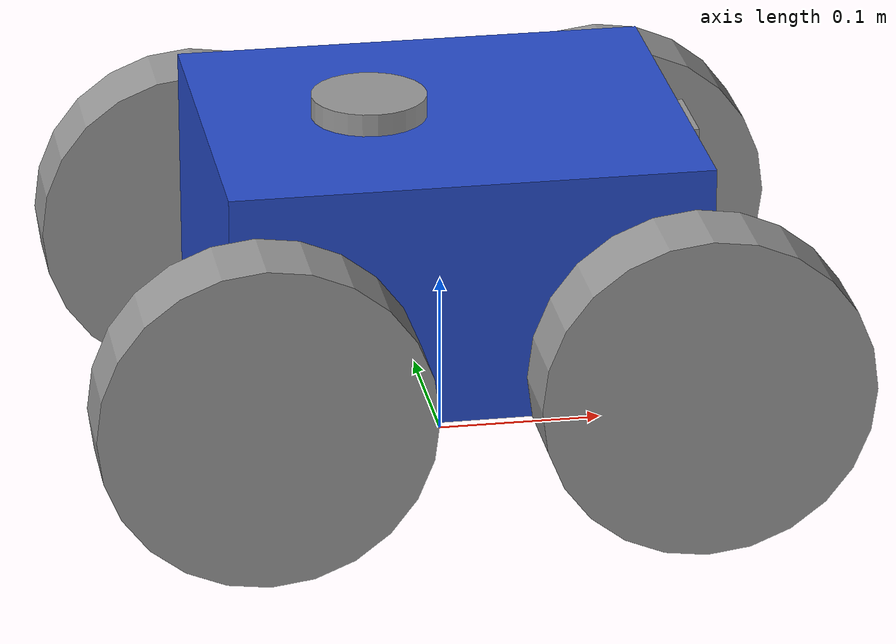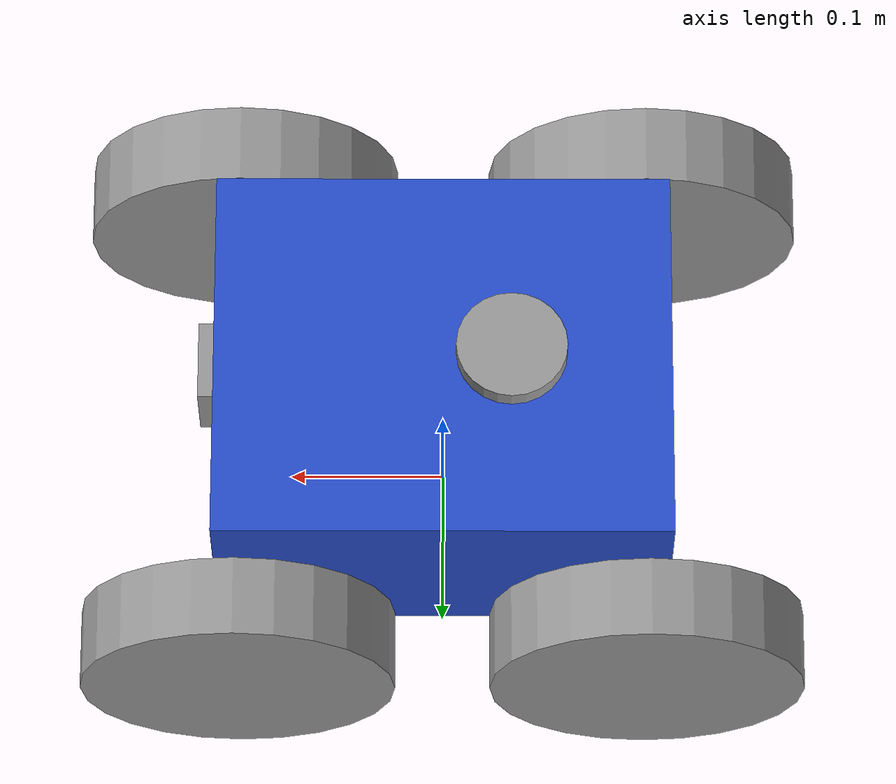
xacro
<?xml version="1.0" ?>

<robot name="yardguard" xmlns:xacro="http://www.ros.org/wiki/xacro">

  <xacro:include filename="common_properties.xacro" />
  <xacro:include filename="mobile_base.xacro" />
  <xacro:include filename="mobile_base_gazebo.xacro" />
  <xacro:include filename="camera.xacro" />

</robot>

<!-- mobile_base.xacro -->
<robot name="yardguard" xmlns:xacro="http://www.ros.org/wiki/xacro">
  <xacro:property name="base_length" value="0.288" />
  <xacro:property name="base_width" value="0.24" />
  <xacro:property name="base_height" value="0.15" />

  <xacro:property name="wheel_radius" value="0.1" />
  <xacro:property name="wheel_length" value="0.05" />

  <!-- base_footprint (projection of base_link on the ground) -->
  <link name="base_footprint"/>
  <joint name="base_joint" type="fixed">
    <parent link="base_footprint"/>
    <child link="base_link"/>
    <origin rpy="0 0 0" xyz="0 0 ${wheel_radius + 0.035}"/>
  </joint>
  <!-- base_link and base_scan (required for Nav2) -->
  <link name="base_link">
    <visual>
      <geometry>
        <box size="${base_length} ${base_width} ${base_height} "/>
      </geometry>
      <origin rpy="0 0 0" xyz="0 0 0"/>
      <material name="blue"/>
    </visual>
    <collision>
        <geometry>
            <box size="${base_length} ${base_width} ${base_height}" />
        </geometry>
        <origin xyz="0 0 ${base_height / 2.0}" rpy="0 0 0" />
    </collision>
    <xacro:box_inertia m="5.0" x="${base_length}" y="${base_width}" z="${base_height}"
                           o_xyz="0 0 ${base_height / 2.0}" o_rpy="0 0 0" />
  </link>
  <joint name="base_scan_joint" type="fixed">
    <parent link="base_link"/>
    <child link="base_scan"/>
    <origin rpy="0 0 0" xyz="-0.043199999999999995 0 0.075"/>
  </joint>
  <link name="base_scan">
    <visual>
      <geometry>
        <cylinder length="0.0275" radius="0.035"/>
      </geometry>
      <origin rpy="0 0 0" xyz="0 0 0"/>
      <material name="grey"/>
    </visual>
  </link>
  <!-- Wheels (2 differential wheels + 1 caster wheel to keep the balance) -->
  <joint name="back_left_wheel_joint" type="continuous">
    <parent link="base_link"/>
    <child link="back_left_wheel"/>
    <origin rpy="0 0 0" xyz="-0.13 0.155 -0.045"/>
    <axis xyz="0 1 0"/>
  </joint>
  <link name="back_left_wheel">
    <visual>
      <geometry>
        <cylinder length="${wheel_length}" radius="${wheel_radius}"/>
      </geometry>
      <origin rpy="1.57 0 0" xyz="0 0 0"/>
      <material name="grey"/>
    </visual>
    <collision>
        <geometry>
            <sphere radius="${wheel_radius}" />
        </geometry>
        <origin xyz="0 0 0" rpy="0 0 0" />
    </collision>
    <xacro:cylinder_inertia m="1.0" r="${wheel_radius}" l="${wheel_length}"
                            o_xyz="0 0 0" o_rpy="${pi / 2.0} 0 0" />
  </link>
  <joint name="back_right_wheel_joint" type="continuous">
    <parent link="base_link"/>
    <child link="back_right_wheel"/>
    <origin rpy="0 0 0" xyz="-0.13 -0.155 -0.045"/>
    <axis xyz="0 1 0"/>
  </joint>
  <link name="back_right_wheel">
    <visual>
      <geometry>
        <cylinder length="${wheel_length}" radius="${wheel_radius}"/>
      </geometry>
      <origin rpy="1.57 0 0" xyz="0 0 0"/>
      <material name="grey"/>
    </visual>
    <collision>
        <geometry>
            <sphere radius="${wheel_radius}" />
        </geometry>
        <origin xyz="0 0 0" rpy="0 0 0" />
    </collision>
    <xacro:cylinder_inertia m="1.0" r="${wheel_radius}" l="${wheel_length}"
                            o_xyz="0 0 0" o_rpy="${pi / 2.0} 0 0" />
  </link>
  <joint name="front_right_wheel_joint" type="continuous">
    <parent link="base_link"/>
    <child link="front_right_wheel"/>
    <origin rpy="0 0 0" xyz="0.13 -0.155 -0.045"/>
    <axis xyz="0 1 0"/>
  </joint>
  <link name="front_right_wheel">
    <visual>
      <geometry>
        <cylinder length="${wheel_length}" radius="${wheel_radius}"/>
      </geometry>
      <origin rpy="1.57 0 0" xyz="0 0 0"/>
      <material name="grey"/>
    </visual>
    <collision>
        <geometry>
            <sphere radius="${wheel_radius}" />
        </geometry>
        <origin xyz="0 0 0" rpy="0 0 0" />
    </collision>
    <xacro:cylinder_inertia m="1.0" r="${wheel_radius}" l="${wheel_length}"
                            o_xyz="0 0 0" o_rpy="${pi / 2.0} 0 0" />
  </link>
  <joint name="front_left_wheel_joint" type="continuous">
    <parent link="base_link"/>
    <child link="front_left_wheel"/>
    <origin rpy="0 0 0" xyz="0.13 0.155 -0.045"/>
    <axis xyz="0 1 0"/>
  </joint>
  <link name="front_left_wheel">
    <visual>
      <geometry>
        <cylinder length="${wheel_length}" radius="${wheel_radius}"/>
      </geometry>
      <origin rpy="1.57 0 0" xyz="0 0 0"/>
      <material name="grey"/>
    </visual>
    <collision>
        <geometry>
            <sphere radius="${wheel_radius}" />
        </geometry>
        <origin xyz="0 0 0" rpy="0 0 0" />
    </collision>
    <xacro:cylinder_inertia m="1.0" r="${wheel_radius}" l="${wheel_length}"
                            o_xyz="0 0 0" o_rpy="${pi / 2.0} 0 0" />
  </link>
</robot>

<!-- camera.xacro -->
<robot xmlns:xacro="http://www.ros.org/wiki/xacro">

    <xacro:property name="camera_length" value="0.01" />
    <xacro:property name="camera_width" value="0.05" />
    <xacro:property name="camera_height" value="0.05" />

    <link name="camera_link">
        <visual>
            <geometry>
                <box size="${camera_length} ${camera_width} ${camera_height}" />
            </geometry>
            <material name="grey" />
        </visual>
        <collision>
            <geometry>
                <box size="${camera_length} ${camera_width} ${camera_height}" />
            </geometry>
        </collision>
        <xacro:box_inertia m="0.1" x="${camera_length}" y="${camera_width}" z="${camera_height}"
                           o_xyz="0 0 0" o_rpy="0 0 0" />
    </link>

    <joint name="base_camera_joint" type="fixed">
        <parent link="base_link" />
        <child link="camera_link" />
        <origin xyz="${(base_length + camera_length) / 2.0} 0 ${base_height / 4.0}" rpy="0 0 0" />
    </joint>

    <link name="camera_link_optical" />

    <joint name="camera_optical_joint" type="fixed">
        <origin xyz="0 0 0" rpy="${-pi/2} 0 ${-pi/2}"/>
        <parent link="camera_link"/>
        <child link="camera_link_optical"/>
    </joint>

    <gazebo reference="camera_link">
        <sensor name="camera" type="camera">
            <camera>
                <horizontal_fov>1.3962634</horizontal_fov>
                <image>
                    <width>640</width>
                    <height>480</height>
                    <format>R8G8B8</format>
                </image>
                <clip>
                    <near>0.1</near>
                    <far>15</far>
                </clip>
                <noise>
                    <type>gaussian</type>
                    <mean>0.0</mean>
                    <stddev>0.007</stddev>
                </noise>
                <optical_frame_id>camera_link_optical</optical_frame_id>
                <camera_info_topic>camera/camera_info</camera_info_topic>
            </camera>
            <always_on>1</always_on>
            <update_rate>20</update_rate>
            <visualize>true</visualize>
            <topic>camera/image_raw</topic>
        </sensor>
    </gazebo>

</robot>
